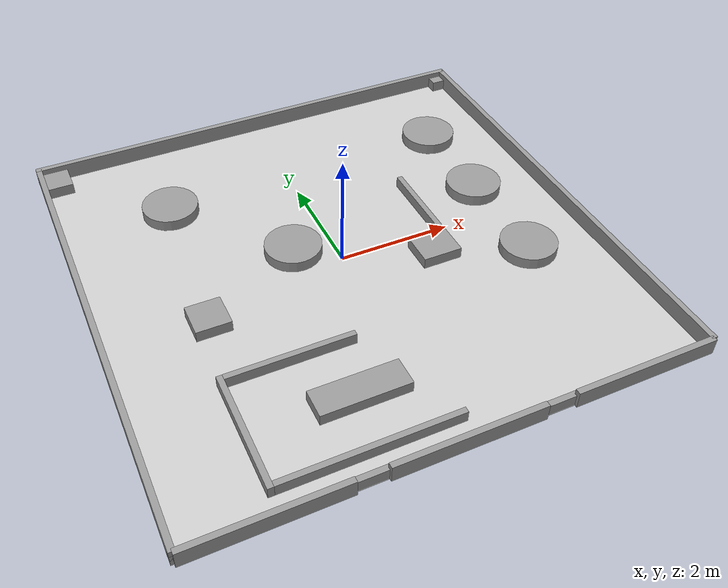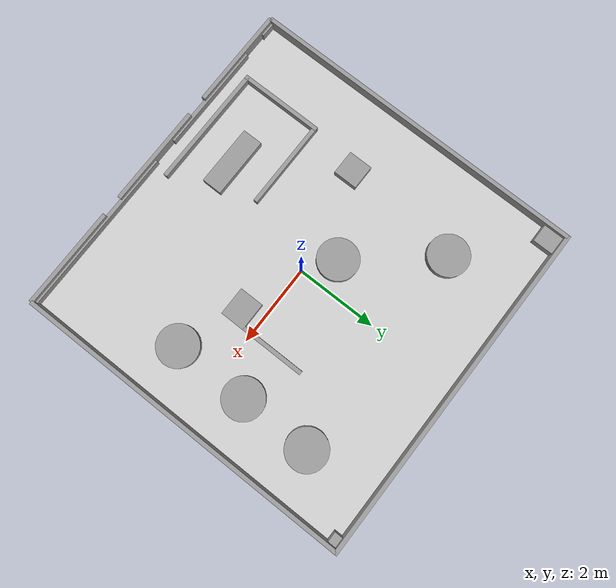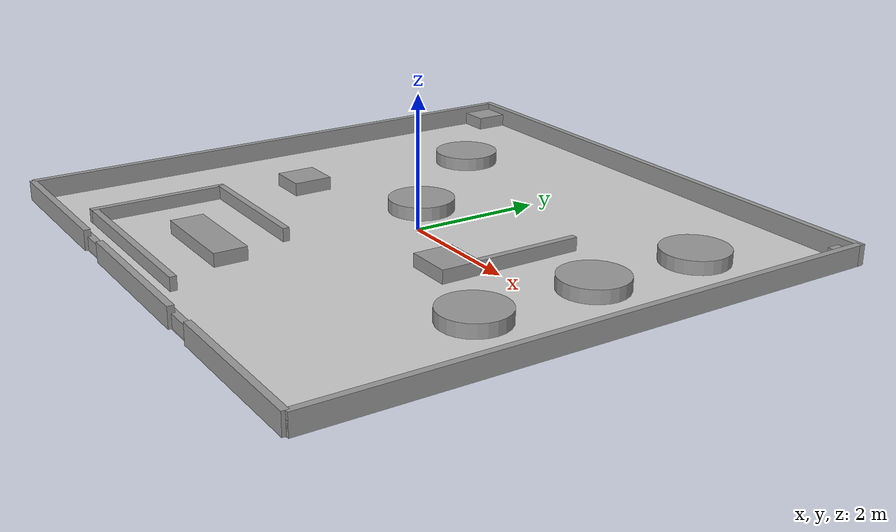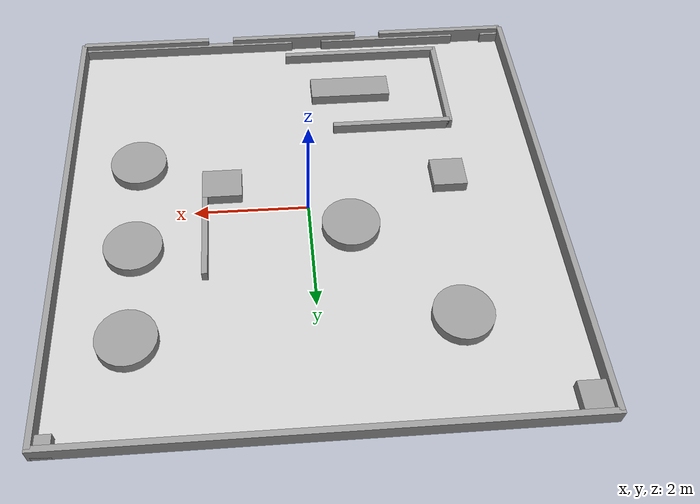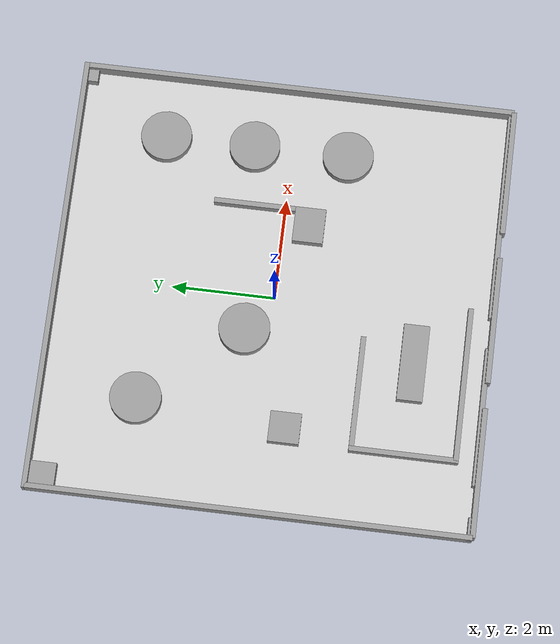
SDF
<?xml version="1.0" ?>
<sdf version="1.6">
  <world name="aa10_complete_stadium">

    <!-- Light -->
    <light name='sun' type='directional'>
      <cast_shadows>1</cast_shadows>
      <pose>0 0 10 0 0 0</pose>
      <diffuse>0.8 0.8 0.8 1</diffuse>
      <specular>0.2 0.2 0.2 1</specular>
      <attenuation>
        <range>1000</range>
        <constant>0.9</constant>
        <linear>0.01</linear>
        <quadratic>0.001</quadratic>
      </attenuation>
      <direction>-0.5 0.1 -0.9</direction>
    </light>

    <!-- AA10 Stadium Ground with texture -->
    <model name='aa10_stadium_ground'>
      <static>1</static>
      <link name='link'>
        <collision name='collision'>
          <geometry>
            <plane>
              <normal>0 0 1</normal>
              <size>8.5 8.5</size>
            </plane>
          </geometry>
          <surface>
            <friction>
              <ode>
                <mu>100</mu>
                <mu2>50</mu2>
              </ode>
            </friction>
          </surface>
        </collision>
        <visual name='visual'>
          <cast_shadows>0</cast_shadows>
          <geometry>
            <plane>
              <normal>0 0 1</normal>
              <size>8.5 8.5</size>
            </plane>
          </geometry>
          <material>
            <script>
              <uri>model://aa10_ground/materials/scripts</uri>
              <uri>model://aa10_ground/materials/textures/</uri>
              <name>TrackGround/Image</name>
            </script>
          </material>
        </visual>
      </link>
      <pose>0 0 0.0001 0 0 0</pose>
    </model>

    <!-- Track Boundaries and Walls -->
    <model name='track_boundaries'>
      <static>1</static>

      <!-- Outer Walls -->
      <!-- Top Wall -->
      <link name='wall_top'>
        <collision name='collision'>
          <geometry>
            <box>
              <size>8.6 0.1 0.3</size>
            </box>
          </geometry>
          <pose>0 0 0.15 0 0 0</pose>
        </collision>
        <visual name='visual'>
          <pose>0 0 0.15 0 0 0</pose>
          <geometry>
            <box>
              <size>8.6 0.1 0.3</size>
            </box>
          </geometry>
          <material>
            <script>
              <uri>file://media/materials/scripts/gazebo.material</uri>
              <name>Gazebo/Grey</name>
            </script>
          </material>
        </visual>
        <pose>0 4.25 0 0 0 0</pose>
      </link>

      <!-- Bottom Wall (with gaps for start/finish) -->
      <link name='wall_bottom_left'>
        <collision name='collision'>
          <geometry>
            <box>
              <size>2.5 0.1 0.3</size>
            </box>
          </geometry>
          <pose>0 0 0.15 0 0 0</pose>
        </collision>
        <visual name='visual'>
          <pose>0 0 0.15 0 0 0</pose>
          <geometry>
            <box>
              <size>2.5 0.1 0.3</size>
            </box>
          </geometry>
          <material>
            <script>
              <uri>file://media/materials/scripts/gazebo.material</uri>
              <name>Gazebo/Grey</name>
            </script>
          </material>
        </visual>
        <pose>-3 -4.25 0 0 0 0</pose>
      </link>

      <link name='wall_bottom_middle'>
        <collision name='collision'>
          <geometry>
            <box>
              <size>2.5 0.1 0.3</size>
            </box>
          </geometry>
          <pose>0 0 0.15 0 0 0</pose>
        </collision>
        <visual name='visual'>
          <pose>0 0 0.15 0 0 0</pose>
          <geometry>
            <box>
              <size>2.5 0.1 0.3</size>
            </box>
          </geometry>
          <material>
            <script>
              <uri>file://media/materials/scripts/gazebo.material</uri>
              <name>Gazebo/Grey</name>
            </script>
          </material>
        </visual>
        <pose>0 -4.25 0 0 0 0</pose>
      </link>

      <link name='wall_bottom_right'>
        <collision name='collision'>
          <geometry>
            <box>
              <size>2.5 0.1 0.3</size>
            </box>
          </geometry>
          <pose>0 0 0.15 0 0 0</pose>
        </collision>
        <visual name='visual'>
          <pose>0 0 0.15 0 0 0</pose>
          <geometry>
            <box>
              <size>2.5 0.1 0.3</size>
            </box>
          </geometry>
          <material>
            <script>
              <uri>file://media/materials/scripts/gazebo.material</uri>
              <name>Gazebo/Grey</name>
            </script>
          </material>
        </visual>
        <pose>3 -4.25 0 0 0 0</pose>
      </link>

      <!-- Left Wall -->
      <link name='wall_left'>
        <collision name='collision'>
          <geometry>
            <box>
              <size>8.5 0.1 0.3</size>
            </box>
          </geometry>
          <pose>0 0 0.15 0 0 0</pose>
        </collision>
        <visual name='visual'>
          <pose>0 0 0.15 0 0 0</pose>
          <geometry>
            <box>
              <size>8.5 0.1 0.3</size>
            </box>
          </geometry>
          <material>
            <script>
              <uri>file://media/materials/scripts/gazebo.material</uri>
              <name>Gazebo/Grey</name>
            </script>
          </material>
        </visual>
        <pose>-4.25 0 0 0 0 1.5708</pose>
      </link>

      <!-- Right Wall -->
      <link name='wall_right'>
        <collision name='collision'>
          <geometry>
            <box>
              <size>8.5 0.1 0.3</size>
            </box>
          </geometry>
          <pose>0 0 0.15 0 0 0</pose>
        </collision>
        <visual name='visual'>
          <pose>0 0 0.15 0 0 0</pose>
          <geometry>
            <box>
              <size>8.5 0.1 0.3</size>
            </box>
          </geometry>
          <material>
            <script>
              <uri>file://media/materials/scripts/gazebo.material</uri>
              <name>Gazebo/Grey</name>
            </script>
          </material>
        </visual>
        <pose>4.25 0 0 0 0 1.5708</pose>
      </link>

      <!-- Inner Track Walls (exact positions from ROS1) -->

      <!-- Wall segments from mando_track.world -->
      <link name='wall_10'>
        <collision name='collision'>
          <geometry>
            <box>
              <size>0.45 0.1 0.2</size>
            </box>
          </geometry>
          <pose>0 0 0.1 0 0 0</pose>
        </collision>
        <visual name='visual'>
          <pose>0 0 0.1 0 0 0</pose>
          <geometry>
            <box>
              <size>0.45 0.1 0.2</size>
            </box>
          </geometry>
          <material>
            <script>
              <uri>file://media/materials/scripts/gazebo.material</uri>
              <name>Gazebo/Grey</name>
            </script>
          </material>
        </visual>
        <pose>-4.075 -4.2 0 0 0 0</pose>
      </link>

      <link name='wall_13'>
        <collision name='collision'>
          <geometry>
            <box>
              <size>2.7 0.1 0.2</size>
            </box>
          </geometry>
          <pose>0 0 0.1 0 0 0</pose>
        </collision>
        <visual name='visual'>
          <pose>0 0 0.1 0 0 0</pose>
          <geometry>
            <box>
              <size>2.7 0.1 0.2</size>
            </box>
          </geometry>
          <material>
            <script>
              <uri>file://media/materials/scripts/gazebo.material</uri>
              <name>Gazebo/Grey</name>
            </script>
          </material>
        </visual>
        <pose>-1.9 -4.2 0 0 0 0</pose>
      </link>

      <link name='wall_15'>
        <collision name='collision'>
          <geometry>
            <box>
              <size>4.25 0.1 0.2</size>
            </box>
          </geometry>
          <pose>0 0 0.1 0 0 0</pose>
        </collision>
        <visual name='visual'>
          <pose>0 0 0.1 0 0 0</pose>
          <geometry>
            <box>
              <size>4.25 0.1 0.2</size>
            </box>
          </geometry>
          <material>
            <script>
              <uri>file://media/materials/scripts/gazebo.material</uri>
              <name>Gazebo/Grey</name>
            </script>
          </material>
        </visual>
        <pose>2.175 -4.2 0 0 0 0</pose>
      </link>

      <link name='wall_17'>
        <collision name='collision'>
          <geometry>
            <box>
              <size>2.2 0.1 0.2</size>
            </box>
          </geometry>
          <pose>0 0 0.1 0 0 0</pose>
        </collision>
        <visual name='visual'>
          <pose>0 0 0.1 0 0 0</pose>
          <geometry>
            <box>
              <size>2.2 0.1 0.2</size>
            </box>
          </geometry>
          <material>
            <script>
              <uri>file://media/materials/scripts/gazebo.material</uri>
              <name>Gazebo/Grey</name>
            </script>
          </material>
        </visual>
        <pose>-1.7 -1.8 0 0 0 0</pose>
      </link>

      <link name='wall_18'>
        <collision name='collision'>
          <geometry>
            <box>
              <size>2.1 0.1 0.2</size>
            </box>
          </geometry>
          <pose>0 0 0.1 0 0 0</pose>
        </collision>
        <visual name='visual'>
          <pose>0 0 0.1 0 0 0</pose>
          <geometry>
            <box>
              <size>2.1 0.1 0.2</size>
            </box>
          </geometry>
          <material>
            <script>
              <uri>file://media/materials/scripts/gazebo.material</uri>
              <name>Gazebo/Grey</name>
            </script>
          </material>
        </visual>
        <pose>-2.8 -2.8 0 0 0 -1.5708</pose>
      </link>

      <link name='wall_19'>
        <collision name='collision'>
          <geometry>
            <box>
              <size>3.0 0.1 0.2</size>
            </box>
          </geometry>
          <pose>0 0 0.1 0 0 0</pose>
        </collision>
        <visual name='visual'>
          <pose>0 0 0.1 0 0 0</pose>
          <geometry>
            <box>
              <size>3.0 0.1 0.2</size>
            </box>
          </geometry>
          <material>
            <script>
              <uri>file://media/materials/scripts/gazebo.material</uri>
              <name>Gazebo/Grey</name>
            </script>
          </material>
        </visual>
        <pose>-1.3 -3.8 0 0 0 3.14159</pose>
      </link>

      <link name='wall_20'>
        <collision name='collision'>
          <geometry>
            <box>
              <size>1.6 0.1 0.2</size>
            </box>
          </geometry>
          <pose>0 0 0.1 0 0 0</pose>
        </collision>
        <visual name='visual'>
          <pose>0 0 0.1 0 0 0</pose>
          <geometry>
            <box>
              <size>1.6 0.1 0.2</size>
            </box>
          </geometry>
          <material>
            <script>
              <uri>file://media/materials/scripts/gazebo.material</uri>
              <name>Gazebo/Grey</name>
            </script>
          </material>
        </visual>
        <pose>1.8 0.6 0 0 0 -1.5708</pose>
      </link>

      <link name='wall_22'>
        <collision name='collision'>
          <geometry>
            <box>
              <size>1.5 0.5 0.2</size>
            </box>
          </geometry>
          <pose>0 0 0.1 0 0 0</pose>
        </collision>
        <visual name='visual'>
          <pose>0 0 0.1 0 0 0</pose>
          <geometry>
            <box>
              <size>1.5 0.5 0.2</size>
            </box>
          </geometry>
          <material>
            <script>
              <uri>file://media/materials/scripts/gazebo.material</uri>
              <name>Gazebo/Grey</name>
            </script>
          </material>
        </visual>
        <pose>-1.0 -2.80 0 0 0 0</pose>
      </link>

      <!-- Cylindrical obstacles (exact positions from ROS1) -->
      <link name='cylinder_10'>
        <collision name='collision'>
          <geometry>
            <cylinder>
              <radius>0.5</radius>
              <length>0.2</length>
            </cylinder>
          </geometry>
          <pose>0 0 0.1 0 0 0</pose>
        </collision>
        <visual name='visual'>
          <pose>0 0 0.1 0 0 0</pose>
          <geometry>
            <cylinder>
              <radius>0.5</radius>
              <length>0.2</length>
            </cylinder>
          </geometry>
          <material>
            <script>
              <uri>file://media/materials/scripts/gazebo.material</uri>
              <name>Gazebo/Grey</name>
            </script>
          </material>
        </visual>
        <pose>-2.3 2.4 0 0 0 0</pose>
      </link>

      <link name='cylinder_11'>
        <collision name='collision'>
          <geometry>
            <cylinder>
              <radius>0.5</radius>
              <length>0.2</length>
            </cylinder>
          </geometry>
          <pose>0 0 0.1 0 0 0</pose>
        </collision>
        <visual name='visual'>
          <pose>0 0 0.1 0 0 0</pose>
          <geometry>
            <cylinder>
              <radius>0.5</radius>
              <length>0.2</length>
            </cylinder>
          </geometry>
          <material>
            <script>
              <uri>file://media/materials/scripts/gazebo.material</uri>
              <name>Gazebo/Grey</name>
            </script>
          </material>
        </visual>
        <pose>3.0 2.5 0 0 0 0</pose>
      </link>

      <link name='cylinder_12'>
        <collision name='collision'>
          <geometry>
            <cylinder>
              <radius>0.5</radius>
              <length>0.2</length>
            </cylinder>
          </geometry>
          <pose>0 0 0.1 0 0 0</pose>
        </collision>
        <visual name='visual'>
          <pose>0 0 0.1 0 0 0</pose>
          <geometry>
            <cylinder>
              <radius>0.5</radius>
              <length>0.2</length>
            </cylinder>
          </geometry>
          <material>
            <script>
              <uri>file://media/materials/scripts/gazebo.material</uri>
              <name>Gazebo/Grey</name>
            </script>
          </material>
        </visual>
        <pose>3.0 0.75 0 0 0 0</pose>
      </link>

      <link name='cylinder_13'>
        <collision name='collision'>
          <geometry>
            <cylinder>
              <radius>0.5</radius>
              <length>0.2</length>
            </cylinder>
          </geometry>
          <pose>0 0 0.1 0 0 0</pose>
        </collision>
        <visual name='visual'>
          <pose>0 0 0.1 0 0 0</pose>
          <geometry>
            <cylinder>
              <radius>0.5</radius>
              <length>0.2</length>
            </cylinder>
          </geometry>
          <material>
            <script>
              <uri>file://media/materials/scripts/gazebo.material</uri>
              <name>Gazebo/Grey</name>
            </script>
          </material>
        </visual>
        <pose>3.0 -1.1 0 0 0 0</pose>
      </link>

      <link name='cylinder_25'>
        <collision name='collision'>
          <geometry>
            <cylinder>
              <radius>0.5</radius>
              <length>0.2</length>
            </cylinder>
          </geometry>
          <pose>0 0 0.1 0 0 0</pose>
        </collision>
        <visual name='visual'>
          <pose>0 0 0.1 0 0 0</pose>
          <geometry>
            <cylinder>
              <radius>0.5</radius>
              <length>0.2</length>
            </cylinder>
          </geometry>
          <material>
            <script>
              <uri>file://media/materials/scripts/gazebo.material</uri>
              <name>Gazebo/Grey</name>
            </script>
          </material>
        </visual>
        <pose>-0.7 0.5 0 0 0 0</pose>
      </link>

      <!-- Box obstacles (exact positions from ROS1) -->
      <link name='wall_21'>
        <collision name='collision'>
          <geometry>
            <box>
              <size>0.6 0.6 0.2</size>
            </box>
          </geometry>
          <pose>0 0 0.1 0 0 0</pose>
        </collision>
        <visual name='visual'>
          <pose>0 0 0.1 0 0 0</pose>
          <geometry>
            <box>
              <size>0.6 0.6 0.2</size>
            </box>
          </geometry>
          <material>
            <script>
              <uri>file://media/materials/scripts/gazebo.material</uri>
              <name>Gazebo/Grey</name>
            </script>
          </material>
        </visual>
        <pose>-2.55 -0.5 0 0 0 0</pose>
      </link>

      <link name='box_10'>
        <collision name='collision'>
          <geometry>
            <box>
              <size>0.7 0.6 0.2</size>
            </box>
          </geometry>
          <pose>0 0 0.1 0 0 0</pose>
        </collision>
        <visual name='visual'>
          <pose>0 0 0.1 0 0 0</pose>
          <geometry>
            <box>
              <size>0.7 0.6 0.2</size>
            </box>
          </geometry>
          <material>
            <script>
              <uri>file://media/materials/scripts/gazebo.material</uri>
              <name>Gazebo/Grey</name>
            </script>
          </material>
        </visual>
        <pose>1.5 -0.5 0 0 0 0</pose>
      </link>

      <link name='wall_23'>
        <collision name='collision'>
          <geometry>
            <box>
              <size>0.5 0.5 0.2</size>
            </box>
          </geometry>
          <pose>0 0 0.1 0 0 0</pose>
        </collision>
        <visual name='visual'>
          <pose>0 0 0.1 0 0 0</pose>
          <geometry>
            <box>
              <size>0.5 0.5 0.2</size>
            </box>
          </geometry>
          <material>
            <script>
              <uri>file://media/materials/scripts/gazebo.material</uri>
              <name>Gazebo/Grey</name>
            </script>
          </material>
        </visual>
        <pose>-4.0 3.95 0 0 0 0</pose>
      </link>

      <link name='wall_24'>
        <collision name='collision'>
          <geometry>
            <box>
              <size>0.3 0.3 0.2</size>
            </box>
          </geometry>
          <pose>0 0 0.1 0 0 0</pose>
        </collision>
        <visual name='visual'>
          <pose>0 0 0.1 0 0 0</pose>
          <geometry>
            <box>
              <size>0.3 0.3 0.2</size>
            </box>
          </geometry>
          <material>
            <script>
              <uri>file://media/materials/scripts/gazebo.material</uri>
              <name>Gazebo/Grey</name>
            </script>
          </material>
        </visual>
        <pose>4.1 4.15 0 0 0 0</pose>
      </link>

    </model>

    <!-- Physics -->
    <physics name="default_physics" default="0" type="ode">
      <max_step_size>0.001</max_step_size>
      <real_time_factor>1</real_time_factor>
      <real_time_update_rate>1000</real_time_update_rate>
    </physics>

    <gravity>0 0 -9.8</gravity>

    <!-- Scene -->
    <scene>
      <ambient>0.4 0.4 0.4 1</ambient>
      <background>0.7 0.7 0.7 1</background>
      <shadows>1</shadows>
    </scene>

    <!-- Camera -->
    <gui fullscreen='0'>
      <camera name='user_camera'>
        <pose>0 -10 8 0 0.5 1.57</pose>
        <view_controller>orbit</view_controller>
        <projection_type>perspective</projection_type>
      </camera>
    </gui>

  </world>
</sdf>
